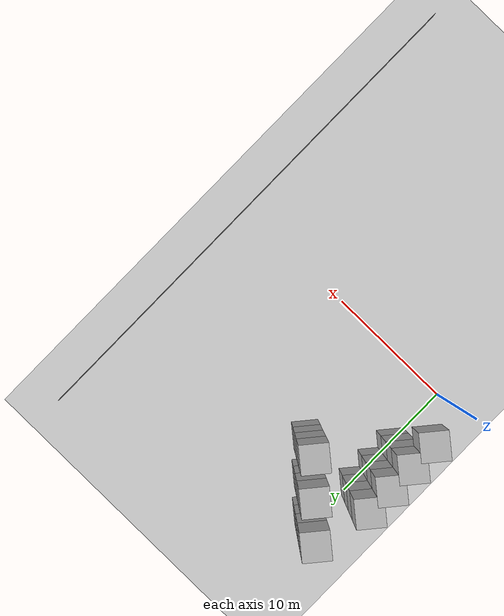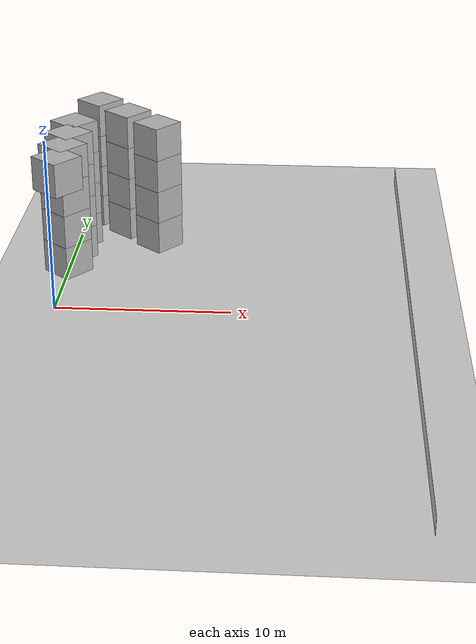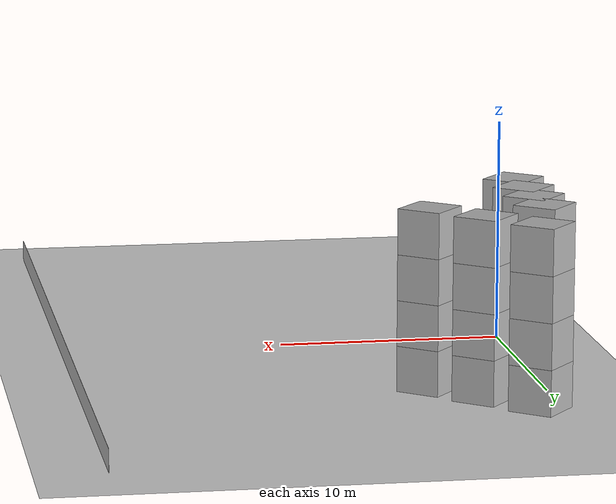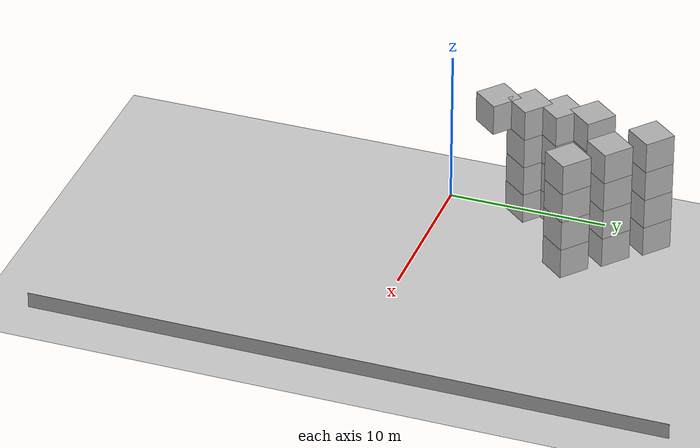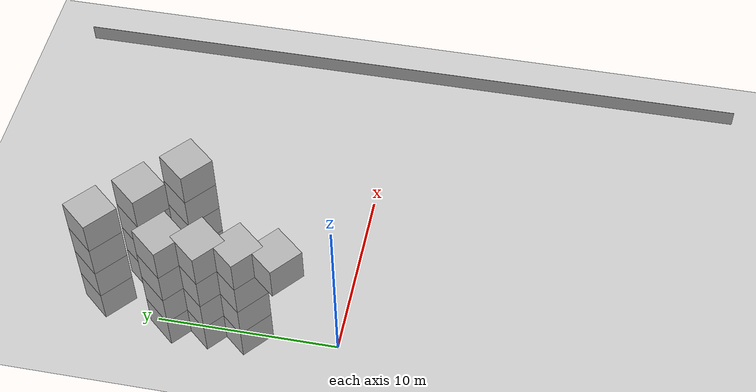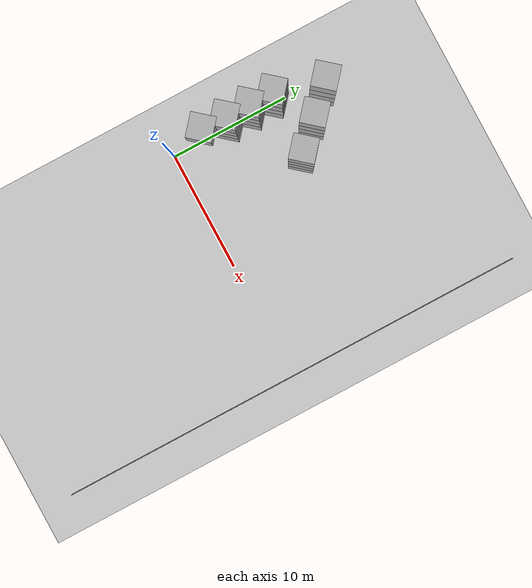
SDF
<sdf version="1.9">
 <world name="swarm_ro_col_glas">
  <model name="ground_plane">
   <static>true</static>
   <link name="link">
    <collision name="collision">
     <geometry><plane><normal>0 0 1</normal><size>1 1</size></plane></geometry>
    </collision>
    <visual name="visual">
     <geometry><plane><normal>0 0 1</normal><size>100 100</size></plane></geometry>
     <material>
      <ambient>0.8 0.8 0.8 1</ambient>
      <diffuse>0.8 0.8 0.8 1</diffuse>
      <specular>0.8 0.8 0.8 1</specular>
     </material>
    </visual>
    <inertial>
     <mass>1</mass>
     <inertia><ixx>1</ixx><ixy>0</ixy><ixz>0</ixz><iyy>1</iyy><iyz>0</iyz><izz>1</izz></inertia>
    </inertial>
   </link>
  </model>
  <model name="wall_2">
   <pose>20 0 .5 0 0 -1.57</pose>
   <static>true</static>
   <link name="link">
    <collision name="collision"><geometry><box><size>40 .01 1</size></box></geometry></collision>
    <visual name="visual">
     <geometry><box><size>40 .01 1</size></box></geometry>
     <material>
      <ambient>0.7 0.7 0.7 1</ambient>
      <diffuse>0.7 0.7 0.7 1</diffuse>
      <specular>0.7 0.7 0.7 1</specular>
     </material>
    </visual>
    <inertial>
     <mass>1</mass>
     <inertia><ixx>1</ixx><ixy>0</ixy><ixz>0</ixz><iyy>1</iyy><iyz>0</iyz><izz>1</izz></inertia>
    </inertial>
   </link>
  </model>
  <model name="obstacle_left_53">
   <static>true</static>
   <pose>0 3 7 0 0 -0.7</pose>
   <link name="link">
    <collision name="collision"><geometry><box><size>2 2 2</size></box></geometry></collision>
    <visual name="visual">
     <geometry><box><size>2 2 2</size></box></geometry>
     <material>
      <ambient>0.7 0.7 0.7 1</ambient>
      <diffuse>0.7 0.7 0.7 1</diffuse>
      <specular>0.7 0.7 0.7 1</specular>
     </material>
    </visual>
   </link>
  </model>
  <model name="obstacle_left_60">
   <static>true</static>
   <pose>0 5 1 0 0 -0.7</pose>
   <link name="link">
    <collision name="collision"><geometry><box><size>2 2 2</size></box></geometry></collision>
    <visual name="visual">
     <geometry><box><size>2 2 2</size></box></geometry>
     <material>
      <ambient>0.7 0.7 0.7 1</ambient>
      <diffuse>0.7 0.7 0.7 1</diffuse>
      <specular>0.7 0.7 0.7 1</specular>
     </material>
    </visual>
   </link>
  </model>
  <model name="obstacle_left_61">
   <static>true</static>
   <pose>0 5 3 0 0 -0.7</pose>
   <link name="link">
    <collision name="collision"><geometry><box><size>2 2 2</size></box></geometry></collision>
    <visual name="visual">
     <geometry><box><size>2 2 2</size></box></geometry>
     <material>
      <ambient>0.7 0.7 0.7 1</ambient>
      <diffuse>0.7 0.7 0.7 1</diffuse>
      <specular>0.7 0.7 0.7 1</specular>
     </material>
    </visual>
   </link>
  </model>
  <model name="obstacle_left_62">
   <static>true</static>
   <pose>0 5 5 0 0 -0.7</pose>
   <link name="link">
    <collision name="collision"><geometry><box><size>2 2 2</size></box></geometry></collision>
    <visual name="visual">
     <geometry><box><size>2 2 2</size></box></geometry>
     <material>
      <ambient>0.7 0.7 0.7 1</ambient>
      <diffuse>0.7 0.7 0.7 1</diffuse>
      <specular>0.7 0.7 0.7 1</specular>
     </material>
    </visual>
   </link>
  </model>
  <model name="obstacle_left_63">
   <static>true</static>
   <pose>0 5 7 0 0 -0.7</pose>
   <link name="link">
    <collision name="collision"><geometry><box><size>2 2 2</size></box></geometry></collision>
    <visual name="visual">
     <geometry><box><size>2 2 2</size></box></geometry>
     <material>
      <ambient>0.7 0.7 0.7 1</ambient>
      <diffuse>0.7 0.7 0.7 1</diffuse>
      <specular>0.7 0.7 0.7 1</specular>
     </material>
    </visual>
   </link>
  </model>
  <model name="obstacle_left_70">
   <static>true</static>
   <pose>0 7 1 0 0 -0.7</pose>
   <link name="link">
    <collision name="collision"><geometry><box><size>2 2 2</size></box></geometry></collision>
    <visual name="visual">
     <geometry><box><size>2 2 2</size></box></geometry>
     <material>
      <ambient>0.7 0.7 0.7 1</ambient>
      <diffuse>0.7 0.7 0.7 1</diffuse>
      <specular>0.7 0.7 0.7 1</specular>
     </material>
    </visual>
   </link>
  </model>
  <model name="obstacle_left_71">
   <static>true</static>
   <pose>0 7 3 0 0 -0.7</pose>
   <link name="link">
    <collision name="collision"><geometry><box><size>2 2 2</size></box></geometry></collision>
    <visual name="visual">
     <geometry><box><size>2 2 2</size></box></geometry>
     <material>
      <ambient>0.7 0.7 0.7 1</ambient>
      <diffuse>0.7 0.7 0.7 1</diffuse>
      <specular>0.7 0.7 0.7 1</specular>
     </material>
    </visual>
   </link>
  </model>
  <model name="obstacle_left_72">
   <static>true</static>
   <pose>0 7 5 0 0 -0.7</pose>
   <link name="link">
    <collision name="collision"><geometry><box><size>2 2 2</size></box></geometry></collision>
    <visual name="visual">
     <geometry><box><size>2 2 2</size></box></geometry>
     <material>
      <ambient>0.7 0.7 0.7 1</ambient>
      <diffuse>0.7 0.7 0.7 1</diffuse>
      <specular>0.7 0.7 0.7 1</specular>
     </material>
    </visual>
   </link>
  </model>
  <model name="obstacle_left_73">
   <static>true</static>
   <pose>0 7 7 0 0 -0.7</pose>
   <link name="link">
    <collision name="collision"><geometry><box><size>2 2 2</size></box></geometry></collision>
    <visual name="visual">
     <geometry><box><size>2 2 2</size></box></geometry>
     <material>
      <ambient>0.7 0.7 0.7 1</ambient>
      <diffuse>0.7 0.7 0.7 1</diffuse>
      <specular>0.7 0.7 0.7 1</specular>
     </material>
    </visual>
   </link>
  </model>
  <model name="obstacle_left_80">
   <static>true</static>
   <pose>0 9 1 0 0 -0.7</pose>
   <link name="link">
    <collision name="collision"><geometry><box><size>2 2 2</size></box></geometry></collision>
    <visual name="visual">
     <geometry><box><size>2 2 2</size></box></geometry>
     <material>
      <ambient>0.7 0.7 0.7 1</ambient>
      <diffuse>0.7 0.7 0.7 1</diffuse>
      <specular>0.7 0.7 0.7 1</specular>
     </material>
    </visual>
   </link>
  </model>
  <model name="obstacle_left_81">
   <static>true</static>
   <pose>0 9 3 0 0 -0.7</pose>
   <link name="link">
    <collision name="collision"><geometry><box><size>2 2 2</size></box></geometry></collision>
    <visual name="visual">
     <geometry><box><size>2 2 2</size></box></geometry>
     <material>
      <ambient>0.7 0.7 0.7 1</ambient>
      <diffuse>0.7 0.7 0.7 1</diffuse>
      <specular>0.7 0.7 0.7 1</specular>
     </material>
    </visual>
   </link>
  </model>
  <model name="obstacle_left_82">
   <static>true</static>
   <pose>0 9 5 0 0 -0.7</pose>
   <link name="link">
    <collision name="collision"><geometry><box><size>2 2 2</size></box></geometry></collision>
    <visual name="visual">
     <geometry><box><size>2 2 2</size></box></geometry>
     <material>
      <ambient>0.7 0.7 0.7 1</ambient>
      <diffuse>0.7 0.7 0.7 1</diffuse>
      <specular>0.7 0.7 0.7 1</specular>
     </material>
    </visual>
   </link>
  </model>
  <model name="obstacle_left_83">
   <static>true</static>
   <pose>0 9 7 0 0 -0.7</pose>
   <link name="link">
    <collision name="collision"><geometry><box><size>2 2 2</size></box></geometry></collision>
    <visual name="visual">
     <geometry><box><size>2 2 2</size></box></geometry>
     <material>
      <ambient>0.7 0.7 0.7 1</ambient>
      <diffuse>0.7 0.7 0.7 1</diffuse>
      <specular>0.7 0.7 0.7 1</specular>
     </material>
    </visual>
   </link>
  </model>
  <model name="obstacle_left_100">
   <static>true</static>
   <pose>1 13 1 0 0 -0.7</pose>
   <link name="link">
    <collision name="collision"><geometry><box><size>2 2 2</size></box></geometry></collision>
    <visual name="visual">
     <geometry><box><size>2 2 2</size></box></geometry>
     <material>
      <ambient>0.7 0.7 0.7 1</ambient>
      <diffuse>0.7 0.7 0.7 1</diffuse>
      <specular>0.7 0.7 0.7 1</specular>
     </material>
    </visual>
   </link>
  </model>
  <model name="obstacle_left_101">
   <static>true</static>
   <pose>1 13 3 0 0 -0.7</pose>
   <link name="link">
    <collision name="collision"><geometry><box><size>2 2 2</size></box></geometry></collision>
    <visual name="visual">
     <geometry><box><size>2 2 2</size></box></geometry>
     <material>
      <ambient>0.7 0.7 0.7 1</ambient>
      <diffuse>0.7 0.7 0.7 1</diffuse>
      <specular>0.7 0.7 0.7 1</specular>
     </material>
    </visual>
   </link>
  </model>
  <model name="obstacle_left_102">
   <static>true</static>
   <pose>1 13 5 0 0 -0.7</pose>
   <link name="link">
    <collision name="collision"><geometry><box><size>2 2 2</size></box></geometry></collision>
    <visual name="visual">
     <geometry><box><size>2 2 2</size></box></geometry>
     <material>
      <ambient>0.7 0.7 0.7 1</ambient>
      <diffuse>0.7 0.7 0.7 1</diffuse>
      <specular>0.7 0.7 0.7 1</specular>
     </material>
    </visual>
   </link>
  </model>
  <model name="obstacle_left_103">
   <static>true</static>
   <pose>1 13 7 0 0 -0.7</pose>
   <link name="link">
    <collision name="collision"><geometry><box><size>2 2 2</size></box></geometry></collision>
    <visual name="visual">
     <geometry><box><size>2 2 2</size></box></geometry>
     <material>
      <ambient>0.7 0.7 0.7 1</ambient>
      <diffuse>0.7 0.7 0.7 1</diffuse>
      <specular>0.7 0.7 0.7 1</specular>
     </material>
    </visual>
   </link>
  </model>
  <model name="obstacle_left_110">
   <static>true</static>
   <pose>3 11 1 0 0 -0.7</pose>
   <link name="link">
    <collision name="collision"><geometry><box><size>2 2 2</size></box></geometry></collision>
    <visual name="visual">
     <geometry><box><size>2 2 2</size></box></geometry>
     <material>
      <ambient>0.7 0.7 0.7 1</ambient>
      <diffuse>0.7 0.7 0.7 1</diffuse>
      <specular>0.7 0.7 0.7 1</specular>
     </material>
    </visual>
   </link>
  </model>
  <model name="obstacle_left_111">
   <static>true</static>
   <pose>3 11 3 0 0 -0.7</pose>
   <link name="link">
    <collision name="collision"><geometry><box><size>2 2 2</size></box></geometry></collision>
    <visual name="visual">
     <geometry><box><size>2 2 2</size></box></geometry>
     <material>
      <ambient>0.7 0.7 0.7 1</ambient>
      <diffuse>0.7 0.7 0.7 1</diffuse>
      <specular>0.7 0.7 0.7 1</specular>
     </material>
    </visual>
   </link>
  </model>
  <model name="obstacle_left_112">
   <static>true</static>
   <pose>3 11 5 0 0 -0.7</pose>
   <link name="link">
    <collision name="collision"><geometry><box><size>2 2 2</size></box></geometry></collision>
    <visual name="visual">
     <geometry><box><size>2 2 2</size></box></geometry>
     <material>
      <ambient>0.7 0.7 0.7 1</ambient>
      <diffuse>0.7 0.7 0.7 1</diffuse>
      <specular>0.7 0.7 0.7 1</specular>
     </material>
    </visual>
   </link>
  </model>
  <model name="obstacle_left_113">
   <static>true</static>
   <pose>3 11 7 0 0 -0.7</pose>
   <link name="link">
    <collision name="collision"><geometry><box><size>2 2 2</size></box></geometry></collision>
    <visual name="visual">
     <geometry><box><size>2 2 2</size></box></geometry>
     <material>
      <ambient>0.7 0.7 0.7 1</ambient>
      <diffuse>0.7 0.7 0.7 1</diffuse>
      <specular>0.7 0.7 0.7 1</specular>
     </material>
    </visual>
   </link>
  </model>
  <model name="obstacle_left_120">
   <static>true</static>
   <pose>5 9 1 0 0 -0.7</pose>
   <link name="link">
    <collision name="collision"><geometry><box><size>2 2 2</size></box></geometry></collision>
    <visual name="visual">
     <geometry><box><size>2 2 2</size></box></geometry>
     <material>
      <ambient>0.7 0.7 0.7 1</ambient>
      <diffuse>0.7 0.7 0.7 1</diffuse>
      <specular>0.7 0.7 0.7 1</specular>
     </material>
    </visual>
   </link>
  </model>
  <model name="obstacle_left_121">
   <static>true</static>
   <pose>5 9 3 0 0 -0.7</pose>
   <link name="link">
    <collision name="collision"><geometry><box><size>2 2 2</size></box></geometry></collision>
    <visual name="visual">
     <geometry><box><size>2 2 2</size></box></geometry>
     <material>
      <ambient>0.7 0.7 0.7 1</ambient>
      <diffuse>0.7 0.7 0.7 1</diffuse>
      <specular>0.7 0.7 0.7 1</specular>
     </material>
    </visual>
   </link>
  </model>
  <model name="obstacle_left_122">
   <static>true</static>
   <pose>5 9 5 0 0 -0.7</pose>
   <link name="link">
    <collision name="collision"><geometry><box><size>2 2 2</size></box></geometry></collision>
    <visual name="visual">
     <geometry><box><size>2 2 2</size></box></geometry>
     <material>
      <ambient>0.7 0.7 0.7 1</ambient>
      <diffuse>0.7 0.7 0.7 1</diffuse>
      <specular>0.7 0.7 0.7 1</specular>
     </material>
    </visual>
   </link>
  </model>
  <model name="obstacle_left_123">
   <static>true</static>
   <pose>5 9 7 0 0 -0.7</pose>
   <link name="link">
    <collision name="collision"><geometry><box><size>2 2 2</size></box></geometry></collision>
    <visual name="visual">
     <geometry><box><size>2 2 2</size></box></geometry>
     <material>
      <ambient>0.7 0.7 0.7 1</ambient>
      <diffuse>0.7 0.7 0.7 1</diffuse>
      <specular>0.7 0.7 0.7 1</specular>
     </material>
    </visual>
   </link>
  </model>
 </world>
</sdf>
